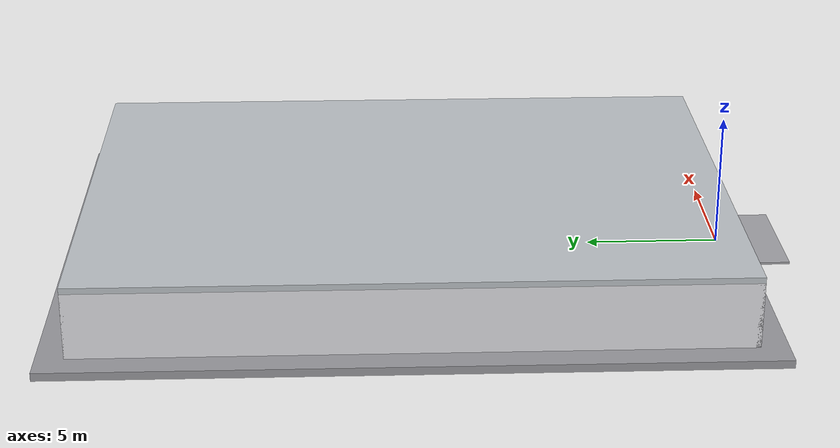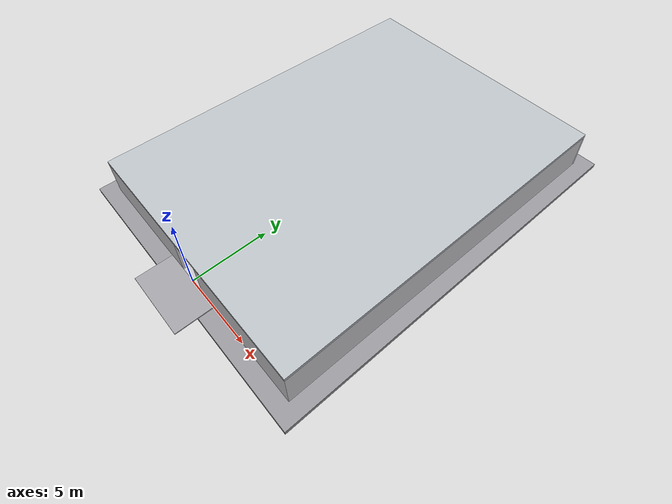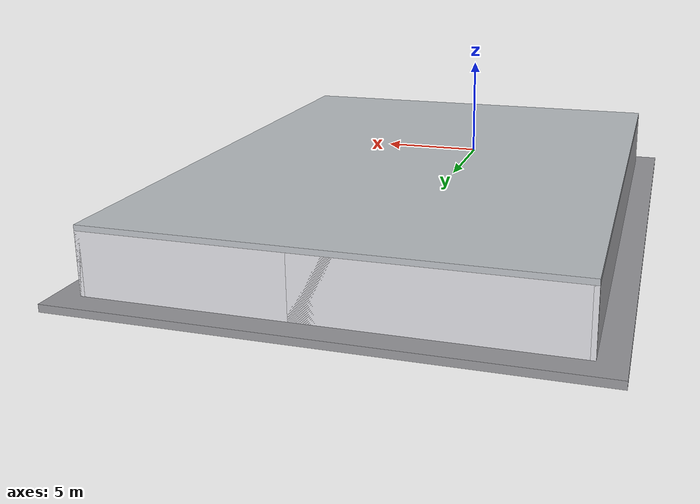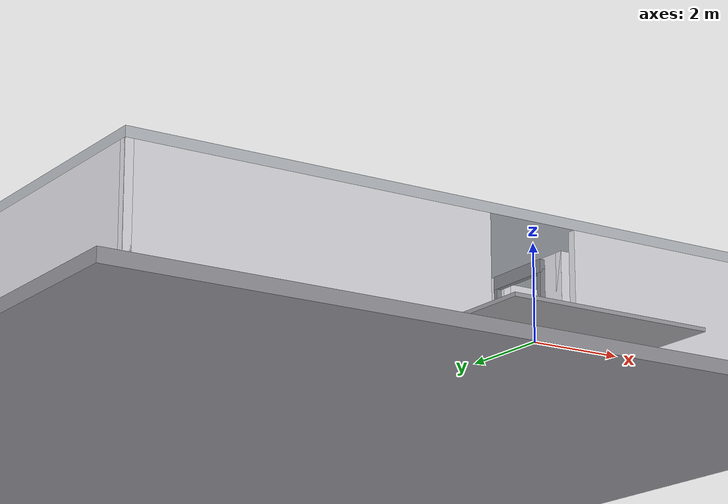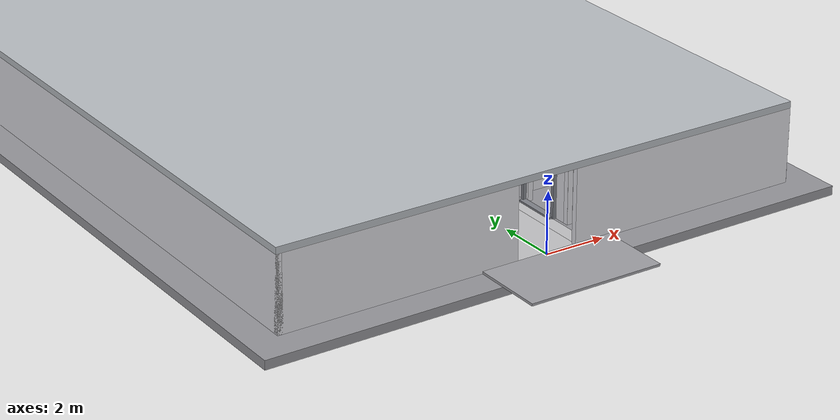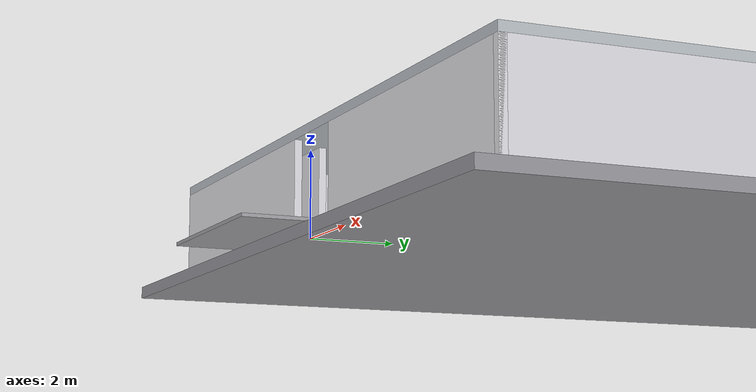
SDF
<?xml version="1.0" ?>
<sdf version="1.7">
  <model name="generated_building">
    <static>true</static>
    <pose>0 0 0 0 0 0</pose>
    <link name="foundation">
      <pose>0.0000 12.0000 -0.1500 0.0000 0.0000 0.0000</pose>
      <collision name="foundation_collision">
        <geometry>
          <box>
            <size>20.0000 26.0000 0.3000</size>
          </box>
        </geometry>
      </collision>
      <visual name="foundation_visual">
        <geometry>
          <box>
            <size>20.0000 26.0000 0.3000</size>
          </box>
        </geometry>
        <material>
          <ambient>0.58 0.58 0.60 1</ambient>
          <diffuse>0.58 0.58 0.60 1</diffuse>
        </material>
      </visual>
      <gravity>false</gravity>
    </link>
    <link name="entrance_apron">
      <pose>0.0000 -1.2000 0.0400 0.0000 0.0000 0.0000</pose>
      <collision name="entrance_apron_collision">
        <geometry>
          <box>
            <size>4.5000 2.4000 0.0800</size>
          </box>
        </geometry>
      </collision>
      <visual name="entrance_apron_visual">
        <geometry>
          <box>
            <size>4.5000 2.4000 0.0800</size>
          </box>
        </geometry>
        <material>
          <ambient>0.62 0.62 0.64 1</ambient>
          <diffuse>0.62 0.62 0.64 1</diffuse>
        </material>
      </visual>
      <gravity>false</gravity>
    </link>
    <link name="slab_floor_0_0">
      <pose>0.0000 15.9250 -0.1100 0.0000 0.0000 0.0000</pose>
      <collision name="slab_floor_0_0_collision">
        <geometry>
          <box>
            <size>18.0000 16.1500 0.2200</size>
          </box>
        </geometry>
      </collision>
      <visual name="slab_floor_0_0_visual">
        <geometry>
          <box>
            <size>18.0000 16.1500 0.2200</size>
          </box>
        </geometry>
        <material>
          <ambient>0.76 0.76 0.77 1</ambient>
          <diffuse>0.76 0.76 0.77 1</diffuse>
        </material>
      </visual>
      <gravity>false</gravity>
    </link>
    <link name="slab_floor_0_1">
      <pose>-6.9700 3.9250 -0.1100 0.0000 0.0000 0.0000</pose>
      <collision name="slab_floor_0_1_collision">
        <geometry>
          <box>
            <size>4.0600 7.8500 0.2200</size>
          </box>
        </geometry>
      </collision>
      <visual name="slab_floor_0_1_visual">
        <geometry>
          <box>
            <size>4.0600 7.8500 0.2200</size>
          </box>
        </geometry>
        <material>
          <ambient>0.76 0.76 0.77 1</ambient>
          <diffuse>0.76 0.76 0.77 1</diffuse>
        </material>
      </visual>
      <gravity>false</gravity>
    </link>
    <link name="slab_floor_0_2">
      <pose>-1.3300 3.9250 -0.1100 0.0000 0.0000 0.0000</pose>
      <collision name="slab_floor_0_2_collision">
        <geometry>
          <box>
            <size>0.4600 7.8500 0.2200</size>
          </box>
        </geometry>
      </collision>
      <visual name="slab_floor_0_2_visual">
        <geometry>
          <box>
            <size>0.4600 7.8500 0.2200</size>
          </box>
        </geometry>
        <material>
          <ambient>0.76 0.76 0.77 1</ambient>
          <diffuse>0.76 0.76 0.77 1</diffuse>
        </material>
      </visual>
      <gravity>false</gravity>
    </link>
    <link name="slab_floor_0_3">
      <pose>0.0000 3.9250 -0.1100 0.0000 0.0000 0.0000</pose>
      <collision name="slab_floor_0_3_collision">
        <geometry>
          <box>
            <size>2.2000 7.8500 0.2200</size>
          </box>
        </geometry>
      </collision>
      <visual name="slab_floor_0_3_visual">
        <geometry>
          <box>
            <size>2.2000 7.8500 0.2200</size>
          </box>
        </geometry>
        <material>
          <ambient>0.76 0.76 0.77 1</ambient>
          <diffuse>0.76 0.76 0.77 1</diffuse>
        </material>
      </visual>
      <gravity>false</gravity>
    </link>
    <link name="slab_floor_0_4">
      <pose>1.3300 3.9250 -0.1100 0.0000 0.0000 0.0000</pose>
      <collision name="slab_floor_0_4_collision">
        <geometry>
          <box>
            <size>0.4600 7.8500 0.2200</size>
          </box>
        </geometry>
      </collision>
      <visual name="slab_floor_0_4_visual">
        <geometry>
          <box>
            <size>0.4600 7.8500 0.2200</size>
          </box>
        </geometry>
        <material>
          <ambient>0.76 0.76 0.77 1</ambient>
          <diffuse>0.76 0.76 0.77 1</diffuse>
        </material>
      </visual>
      <gravity>false</gravity>
    </link>
    <link name="slab_floor_0_5">
      <pose>6.5700 3.9250 -0.1100 0.0000 0.0000 0.0000</pose>
      <collision name="slab_floor_0_5_collision">
        <geometry>
          <box>
            <size>4.8600 7.8500 0.2200</size>
          </box>
        </geometry>
      </collision>
      <visual name="slab_floor_0_5_visual">
        <geometry>
          <box>
            <size>4.8600 7.8500 0.2200</size>
          </box>
        </geometry>
        <material>
          <ambient>0.76 0.76 0.77 1</ambient>
          <diffuse>0.76 0.76 0.77 1</diffuse>
        </material>
      </visual>
      <gravity>false</gravity>
    </link>
    <link name="stair_edge_infill_floor_0">
      <pose>-1.6500 3.8500 -0.1100 0.0000 0.0000 0.0000</pose>
      <collision name="stair_edge_infill_floor_0_collision">
        <geometry>
          <box>
            <size>0.1800 6.0000 0.2200</size>
          </box>
        </geometry>
      </collision>
      <visual name="stair_edge_infill_floor_0_visual">
        <geometry>
          <box>
            <size>0.1800 6.0000 0.2200</size>
          </box>
        </geometry>
        <material>
          <ambient>0.76 0.76 0.77 1</ambient>
          <diffuse>0.76 0.76 0.77 1</diffuse>
        </material>
      </visual>
      <gravity>false</gravity>
    </link>
    <link name="exterior_west_floor_0">
      <pose>-8.9100 12.0000 1.2250 0.0000 0.0000 0.0000</pose>
      <collision name="exterior_west_floor_0_collision">
        <geometry>
          <box>
            <size>0.1800 24.0000 2.4500</size>
          </box>
        </geometry>
      </collision>
      <visual name="exterior_west_floor_0_visual">
        <geometry>
          <box>
            <size>0.1800 24.0000 2.4500</size>
          </box>
        </geometry>
        <material>
          <ambient>0.86 0.86 0.88 1</ambient>
          <diffuse>0.86 0.86 0.88 1</diffuse>
        </material>
      </visual>
      <gravity>false</gravity>
    </link>
    <link name="exterior_east_floor_0">
      <pose>8.9100 12.0000 1.2250 0.0000 0.0000 0.0000</pose>
      <collision name="exterior_east_floor_0_collision">
        <geometry>
          <box>
            <size>0.1800 24.0000 2.4500</size>
          </box>
        </geometry>
      </collision>
      <visual name="exterior_east_floor_0_visual">
        <geometry>
          <box>
            <size>0.1800 24.0000 2.4500</size>
          </box>
        </geometry>
        <material>
          <ambient>0.86 0.86 0.88 1</ambient>
          <diffuse>0.86 0.86 0.88 1</diffuse>
        </material>
      </visual>
      <gravity>false</gravity>
    </link>
    <link name="exterior_north_floor_0">
      <pose>0.0000 23.9100 1.2250 0.0000 0.0000 0.0000</pose>
      <collision name="exterior_north_floor_0_collision">
        <geometry>
          <box>
            <size>18.0000 0.1800 2.4500</size>
          </box>
        </geometry>
      </collision>
      <visual name="exterior_north_floor_0_visual">
        <geometry>
          <box>
            <size>18.0000 0.1800 2.4500</size>
          </box>
        </geometry>
        <material>
          <ambient>0.86 0.86 0.88 1</ambient>
          <diffuse>0.86 0.86 0.88 1</diffuse>
        </material>
      </visual>
      <gravity>false</gravity>
    </link>
    <link name="exterior_south_entrance_left">
      <pose>-5.0100 0.0900 1.2250 0.0000 0.0000 0.0000</pose>
      <collision name="exterior_south_entrance_left_collision">
        <geometry>
          <box>
            <size>7.9800 0.1800 2.4500</size>
          </box>
        </geometry>
      </collision>
      <visual name="exterior_south_entrance_left_visual">
        <geometry>
          <box>
            <size>7.9800 0.1800 2.4500</size>
          </box>
        </geometry>
        <material>
          <ambient>0.86 0.86 0.88 1</ambient>
          <diffuse>0.86 0.86 0.88 1</diffuse>
        </material>
      </visual>
      <gravity>false</gravity>
    </link>
    <link name="exterior_south_entrance_right">
      <pose>5.0100 0.0900 1.2250 0.0000 0.0000 0.0000</pose>
      <collision name="exterior_south_entrance_right_collision">
        <geometry>
          <box>
            <size>7.9800 0.1800 2.4500</size>
          </box>
        </geometry>
      </collision>
      <visual name="exterior_south_entrance_right_visual">
        <geometry>
          <box>
            <size>7.9800 0.1800 2.4500</size>
          </box>
        </geometry>
        <material>
          <ambient>0.86 0.86 0.88 1</ambient>
          <diffuse>0.86 0.86 0.88 1</diffuse>
        </material>
      </visual>
      <gravity>false</gravity>
    </link>
    <link name="north_end_wall_floor_0">
      <pose>0.0000 23.9100 1.2250 0.0000 0.0000 0.0000</pose>
      <collision name="north_end_wall_floor_0_collision">
        <geometry>
          <box>
            <size>2.2000 0.1800 2.4500</size>
          </box>
        </geometry>
      </collision>
      <visual name="north_end_wall_floor_0_visual">
        <geometry>
          <box>
            <size>2.2000 0.1800 2.4500</size>
          </box>
        </geometry>
        <material>
          <ambient>0.86 0.86 0.88 1</ambient>
          <diffuse>0.86 0.86 0.88 1</diffuse>
        </material>
      </visual>
      <gravity>false</gravity>
    </link>
    <link name="floor_0_room_0_corridor_wall_lower">
      <pose>-1.1900 11.5650 1.2250 0.0000 0.0000 0.0000</pose>
      <collision name="floor_0_room_0_corridor_wall_lower_collision">
        <geometry>
          <box>
            <size>0.1800 7.4300 2.4500</size>
          </box>
        </geometry>
      </collision>
      <visual name="floor_0_room_0_corridor_wall_lower_visual">
        <geometry>
          <box>
            <size>0.1800 7.4300 2.4500</size>
          </box>
        </geometry>
        <material>
          <ambient>0.86 0.86 0.88 1</ambient>
          <diffuse>0.86 0.86 0.88 1</diffuse>
        </material>
      </visual>
      <gravity>false</gravity>
    </link>
    <link name="floor_0_room_0_corridor_wall_upper">
      <pose>-1.1900 20.1950 1.2250 0.0000 0.0000 0.0000</pose>
      <collision name="floor_0_room_0_corridor_wall_upper_collision">
        <geometry>
          <box>
            <size>0.1800 7.4300 2.4500</size>
          </box>
        </geometry>
      </collision>
      <visual name="floor_0_room_0_corridor_wall_upper_visual">
        <geometry>
          <box>
            <size>0.1800 7.4300 2.4500</size>
          </box>
        </geometry>
        <material>
          <ambient>0.86 0.86 0.88 1</ambient>
          <diffuse>0.86 0.86 0.88 1</diffuse>
        </material>
      </visual>
      <gravity>false</gravity>
    </link>
    <link name="floor_0_room_0_west_wall">
      <pose>-8.4100 15.8800 1.2250 0.0000 0.0000 0.0000</pose>
      <collision name="floor_0_room_0_west_wall_collision">
        <geometry>
          <box>
            <size>0.1800 16.0600 2.4500</size>
          </box>
        </geometry>
      </collision>
      <visual name="floor_0_room_0_west_wall_visual">
        <geometry>
          <box>
            <size>0.1800 16.0600 2.4500</size>
          </box>
        </geometry>
        <material>
          <ambient>0.86 0.86 0.88 1</ambient>
          <diffuse>0.86 0.86 0.88 1</diffuse>
        </material>
      </visual>
      <gravity>false</gravity>
    </link>
    <link name="floor_0_room_0_south_wall">
      <pose>-4.8000 7.9400 1.2250 0.0000 0.0000 0.0000</pose>
      <collision name="floor_0_room_0_south_wall_collision">
        <geometry>
          <box>
            <size>7.4000 0.1800 2.4500</size>
          </box>
        </geometry>
      </collision>
      <visual name="floor_0_room_0_south_wall_visual">
        <geometry>
          <box>
            <size>7.4000 0.1800 2.4500</size>
          </box>
        </geometry>
        <material>
          <ambient>0.86 0.86 0.88 1</ambient>
          <diffuse>0.86 0.86 0.88 1</diffuse>
        </material>
      </visual>
      <gravity>false</gravity>
    </link>
    <link name="floor_0_room_0_north_wall">
      <pose>-4.8000 23.8200 1.2250 0.0000 0.0000 0.0000</pose>
      <collision name="floor_0_room_0_north_wall_collision">
        <geometry>
          <box>
            <size>7.4000 0.1800 2.4500</size>
          </box>
        </geometry>
      </collision>
      <visual name="floor_0_room_0_north_wall_visual">
        <geometry>
          <box>
            <size>7.4000 0.1800 2.4500</size>
          </box>
        </geometry>
        <material>
          <ambient>0.86 0.86 0.88 1</ambient>
          <diffuse>0.86 0.86 0.88 1</diffuse>
        </material>
      </visual>
      <gravity>false</gravity>
    </link>
    <link name="stair_core_floor_0_west">
      <pose>-4.7600 3.8500 1.2250 0.0000 0.0000 0.0000</pose>
      <collision name="stair_core_floor_0_west_collision">
        <geometry>
          <box>
            <size>0.1800 6.0000 2.4500</size>
          </box>
        </geometry>
      </collision>
      <visual name="stair_core_floor_0_west_visual">
        <geometry>
          <box>
            <size>0.1800 6.0000 2.4500</size>
          </box>
        </geometry>
        <material>
          <ambient>0.86 0.86 0.88 1</ambient>
          <diffuse>0.86 0.86 0.88 1</diffuse>
        </material>
      </visual>
      <gravity>false</gravity>
    </link>
    <link name="stair_core_floor_0_south">
      <pose>-3.2500 0.9400 1.2250 0.0000 0.0000 0.0000</pose>
      <collision name="stair_core_floor_0_south_collision">
        <geometry>
          <box>
            <size>3.2000 0.1800 2.4500</size>
          </box>
        </geometry>
      </collision>
      <visual name="stair_core_floor_0_south_visual">
        <geometry>
          <box>
            <size>3.2000 0.1800 2.4500</size>
          </box>
        </geometry>
        <material>
          <ambient>0.86 0.86 0.88 1</ambient>
          <diffuse>0.86 0.86 0.88 1</diffuse>
        </material>
      </visual>
      <gravity>false</gravity>
    </link>
    <link name="stair_core_floor_0_north">
      <pose>-3.2500 6.7600 1.2250 0.0000 0.0000 0.0000</pose>
      <collision name="stair_core_floor_0_north_collision">
        <geometry>
          <box>
            <size>3.2000 0.1800 2.4500</size>
          </box>
        </geometry>
      </collision>
      <visual name="stair_core_floor_0_north_visual">
        <geometry>
          <box>
            <size>3.2000 0.1800 2.4500</size>
          </box>
        </geometry>
        <material>
          <ambient>0.86 0.86 0.88 1</ambient>
          <diffuse>0.86 0.86 0.88 1</diffuse>
        </material>
      </visual>
      <gravity>false</gravity>
    </link>
    <link name="elevator_core_floor_0_west_lower">
      <pose>1.7400 1.6150 1.2250 0.0000 0.0000 0.0000</pose>
      <collision name="elevator_core_floor_0_west_lower_collision">
        <geometry>
          <box>
            <size>0.1800 0.7300 2.4500</size>
          </box>
        </geometry>
      </collision>
      <visual name="elevator_core_floor_0_west_lower_visual">
        <geometry>
          <box>
            <size>0.1800 0.7300 2.4500</size>
          </box>
        </geometry>
        <material>
          <ambient>0.86 0.86 0.88 1</ambient>
          <diffuse>0.86 0.86 0.88 1</diffuse>
        </material>
      </visual>
      <gravity>false</gravity>
    </link>
    <link name="elevator_core_floor_0_west_upper">
      <pose>1.7400 3.5850 1.2250 0.0000 0.0000 0.0000</pose>
      <collision name="elevator_core_floor_0_west_upper_collision">
        <geometry>
          <box>
            <size>0.1800 0.7300 2.4500</size>
          </box>
        </geometry>
      </collision>
      <visual name="elevator_core_floor_0_west_upper_visual">
        <geometry>
          <box>
            <size>0.1800 0.7300 2.4500</size>
          </box>
        </geometry>
        <material>
          <ambient>0.86 0.86 0.88 1</ambient>
          <diffuse>0.86 0.86 0.88 1</diffuse>
        </material>
      </visual>
      <gravity>false</gravity>
    </link>
    <link name="elevator_core_floor_0_east">
      <pose>3.9600 2.6000 1.2250 0.0000 0.0000 0.0000</pose>
      <collision name="elevator_core_floor_0_east_collision">
        <geometry>
          <box>
            <size>0.1800 2.7000 2.4500</size>
          </box>
        </geometry>
      </collision>
      <visual name="elevator_core_floor_0_east_visual">
        <geometry>
          <box>
            <size>0.1800 2.7000 2.4500</size>
          </box>
        </geometry>
        <material>
          <ambient>0.86 0.86 0.88 1</ambient>
          <diffuse>0.86 0.86 0.88 1</diffuse>
        </material>
      </visual>
      <gravity>false</gravity>
    </link>
    <link name="elevator_core_floor_0_south">
      <pose>2.8500 1.3400 1.2250 0.0000 0.0000 0.0000</pose>
      <collision name="elevator_core_floor_0_south_collision">
        <geometry>
          <box>
            <size>2.4000 0.1800 2.4500</size>
          </box>
        </geometry>
      </collision>
      <visual name="elevator_core_floor_0_south_visual">
        <geometry>
          <box>
            <size>2.4000 0.1800 2.4500</size>
          </box>
        </geometry>
        <material>
          <ambient>0.86 0.86 0.88 1</ambient>
          <diffuse>0.86 0.86 0.88 1</diffuse>
        </material>
      </visual>
      <gravity>false</gravity>
    </link>
    <link name="elevator_core_floor_0_north">
      <pose>2.8500 3.8600 1.2250 0.0000 0.0000 0.0000</pose>
      <collision name="elevator_core_floor_0_north_collision">
        <geometry>
          <box>
            <size>2.4000 0.1800 2.4500</size>
          </box>
        </geometry>
      </collision>
      <visual name="elevator_core_floor_0_north_visual">
        <geometry>
          <box>
            <size>2.4000 0.1800 2.4500</size>
          </box>
        </geometry>
        <material>
          <ambient>0.86 0.86 0.88 1</ambient>
          <diffuse>0.86 0.86 0.88 1</diffuse>
        </material>
      </visual>
      <gravity>false</gravity>
    </link>
    <link name="elevator_threshold_floor_0">
      <pose>1.5400 2.6000 0.0300 0.0000 0.0000 0.0000</pose>
      <collision name="elevator_threshold_floor_0_collision">
        <geometry>
          <box>
            <size>0.2200 1.5000 0.0600</size>
          </box>
        </geometry>
      </collision>
      <visual name="elevator_threshold_floor_0_visual">
        <geometry>
          <box>
            <size>0.2200 1.5000 0.0600</size>
          </box>
        </geometry>
        <material>
          <ambient>0.50 0.51 0.54 1</ambient>
          <diffuse>0.50 0.51 0.54 1</diffuse>
        </material>
      </visual>
      <gravity>false</gravity>
    </link>
    <link name="elevator_sill_infill_floor_0">
      <pose>1.6750 2.6000 -0.1100 0.0000 0.0000 0.0000</pose>
      <collision name="elevator_sill_infill_floor_0_collision">
        <geometry>
          <box>
            <size>0.0500 2.5200 0.2200</size>
          </box>
        </geometry>
      </collision>
      <visual name="elevator_sill_infill_floor_0_visual">
        <geometry>
          <box>
            <size>0.0500 2.5200 0.2200</size>
          </box>
        </geometry>
        <material>
          <ambient>0.72 0.72 0.73 1</ambient>
          <diffuse>0.72 0.72 0.73 1</diffuse>
        </material>
      </visual>
      <gravity>false</gravity>
    </link>
    <link name="elevator_header_floor_0">
      <pose>1.5900 2.6000 2.2600 0.0000 0.0000 0.0000</pose>
      <collision name="elevator_header_floor_0_collision">
        <geometry>
          <box>
            <size>0.1200 1.6000 0.2800</size>
          </box>
        </geometry>
      </collision>
      <visual name="elevator_header_floor_0_visual">
        <geometry>
          <box>
            <size>0.1200 1.6000 0.2800</size>
          </box>
        </geometry>
        <material>
          <ambient>0.50 0.51 0.54 1</ambient>
          <diffuse>0.50 0.51 0.54 1</diffuse>
        </material>
      </visual>
      <gravity>false</gravity>
    </link>
    <link name="elevator_jamb_left_floor_0">
      <pose>1.5900 1.8500 1.1000 0.0000 0.0000 0.0000</pose>
      <collision name="elevator_jamb_left_floor_0_collision">
        <geometry>
          <box>
            <size>0.1200 0.1000 2.2000</size>
          </box>
        </geometry>
      </collision>
      <visual name="elevator_jamb_left_floor_0_visual">
        <geometry>
          <box>
            <size>0.1200 0.1000 2.2000</size>
          </box>
        </geometry>
        <material>
          <ambient>0.50 0.51 0.54 1</ambient>
          <diffuse>0.50 0.51 0.54 1</diffuse>
        </material>
      </visual>
      <gravity>false</gravity>
    </link>
    <link name="elevator_jamb_right_floor_0">
      <pose>1.5900 3.3500 1.1000 0.0000 0.0000 0.0000</pose>
      <collision name="elevator_jamb_right_floor_0_collision">
        <geometry>
          <box>
            <size>0.1200 0.1000 2.2000</size>
          </box>
        </geometry>
      </collision>
      <visual name="elevator_jamb_right_floor_0_visual">
        <geometry>
          <box>
            <size>0.1200 0.1000 2.2000</size>
          </box>
        </geometry>
        <material>
          <ambient>0.50 0.51 0.54 1</ambient>
          <diffuse>0.50 0.51 0.54 1</diffuse>
        </material>
      </visual>
      <gravity>false</gravity>
    </link>
    <link name="elevator_call_panel_floor_0">
      <pose>1.5700 3.5800 1.2000 0.0000 0.0000 0.0000</pose>
      <collision name="elevator_call_panel_floor_0_collision">
        <geometry>
          <box>
            <size>0.0800 0.2200 0.3200</size>
          </box>
        </geometry>
      </collision>
      <visual name="elevator_call_panel_floor_0_visual">
        <geometry>
          <box>
            <size>0.0800 0.2200 0.3200</size>
          </box>
        </geometry>
        <material>
          <ambient>0.20 0.20 0.24 1</ambient>
          <diffuse>0.20 0.20 0.24 1</diffuse>
        </material>
      </visual>
      <gravity>false</gravity>
    </link>
    <link name="floor_0_room_0_desk">
      <pose>-6.2500 19.4450 0.4500 0.0000 0.0000 0.0000</pose>
      <collision name="floor_0_room_0_desk_collision">
        <geometry>
          <box>
            <size>1.5000 0.7000 0.7500</size>
          </box>
        </geometry>
      </collision>
      <visual name="floor_0_room_0_desk_visual">
        <geometry>
          <box>
            <size>1.5000 0.7000 0.7500</size>
          </box>
        </geometry>
        <material>
          <ambient>0.54 0.43 0.34 1</ambient>
          <diffuse>0.54 0.43 0.34 1</diffuse>
        </material>
      </visual>
      <gravity>false</gravity>
    </link>
    <link name="floor_0_room_0_chair">
      <pose>-6.2500 18.5450 0.2800 0.0000 0.0000 0.0000</pose>
      <collision name="floor_0_room_0_chair_collision">
        <geometry>
          <box>
            <size>0.5500 0.5500 0.5500</size>
          </box>
        </geometry>
      </collision>
      <visual name="floor_0_room_0_chair_visual">
        <geometry>
          <box>
            <size>0.5500 0.5500 0.5500</size>
          </box>
        </geometry>
        <material>
          <ambient>0.30 0.30 0.34 1</ambient>
          <diffuse>0.30 0.30 0.34 1</diffuse>
        </material>
      </visual>
      <gravity>false</gravity>
    </link>
    <link name="floor_0_room_0_cabinet">
      <pose>-3.3500 12.3150 0.9000 0.0000 0.0000 0.0000</pose>
      <collision name="floor_0_room_0_cabinet_collision">
        <geometry>
          <box>
            <size>0.6000 1.0000 1.8000</size>
          </box>
        </geometry>
      </collision>
      <visual name="floor_0_room_0_cabinet_visual">
        <geometry>
          <box>
            <size>0.6000 1.0000 1.8000</size>
          </box>
        </geometry>
        <material>
          <ambient>0.72 0.72 0.74 1</ambient>
          <diffuse>0.72 0.72 0.74 1</diffuse>
        </material>
      </visual>
      <gravity>false</gravity>
    </link>
    <link name="floor_0_room_0_side_table">
      <pose>-3.3500 19.4450 0.3200 0.0000 0.0000 0.0000</pose>
      <collision name="floor_0_room_0_side_table_collision">
        <geometry>
          <box>
            <size>0.7000 0.7000 0.4500</size>
          </box>
        </geometry>
      </collision>
      <visual name="floor_0_room_0_side_table_visual">
        <geometry>
          <box>
            <size>0.7000 0.7000 0.4500</size>
          </box>
        </geometry>
        <material>
          <ambient>0.52 0.42 0.33 1</ambient>
          <diffuse>0.52 0.42 0.33 1</diffuse>
        </material>
      </visual>
      <gravity>false</gravity>
    </link>
    <link name="floor_0_room_0_planter">
      <pose>-4.8000 12.3150 0.4500 0.0000 0.0000 0.0000</pose>
      <collision name="floor_0_room_0_planter_collision">
        <geometry>
          <box>
            <size>0.4500 0.4500 0.9000</size>
          </box>
        </geometry>
      </collision>
      <visual name="floor_0_room_0_planter_visual">
        <geometry>
          <box>
            <size>0.4500 0.4500 0.9000</size>
          </box>
        </geometry>
        <material>
          <ambient>0.28 0.46 0.30 1</ambient>
          <diffuse>0.28 0.46 0.30 1</diffuse>
        </material>
      </visual>
      <gravity>false</gravity>
    </link>
    <link name="stair_floor_landing_floor_0">
      <pose>-3.2500 1.5500 -0.0900 0.0000 0.0000 0.0000</pose>
      <collision name="stair_floor_landing_floor_0_collision">
        <geometry>
          <box>
            <size>3.0200 1.0000 0.1800</size>
          </box>
        </geometry>
      </collision>
      <visual name="stair_floor_landing_floor_0_visual">
        <geometry>
          <box>
            <size>3.0200 1.0000 0.1800</size>
          </box>
        </geometry>
        <material>
          <ambient>0.68 0.68 0.70 1</ambient>
          <diffuse>0.68 0.68 0.70 1</diffuse>
        </material>
      </visual>
      <gravity>false</gravity>
    </link>
    <link name="roof">
      <pose>0.0000 12.0000 2.5600 0.0000 0.0000 0.0000</pose>
      <collision name="roof_collision">
        <geometry>
          <box>
            <size>18.0000 24.0000 0.2200</size>
          </box>
        </geometry>
      </collision>
      <visual name="roof_visual">
        <geometry>
          <box>
            <size>18.0000 24.0000 0.2200</size>
          </box>
        </geometry>
        <material>
          <ambient>0.72 0.74 0.76 1</ambient>
          <diffuse>0.72 0.74 0.76 1</diffuse>
        </material>
      </visual>
      <gravity>false</gravity>
    </link>
  </model>
</sdf>
